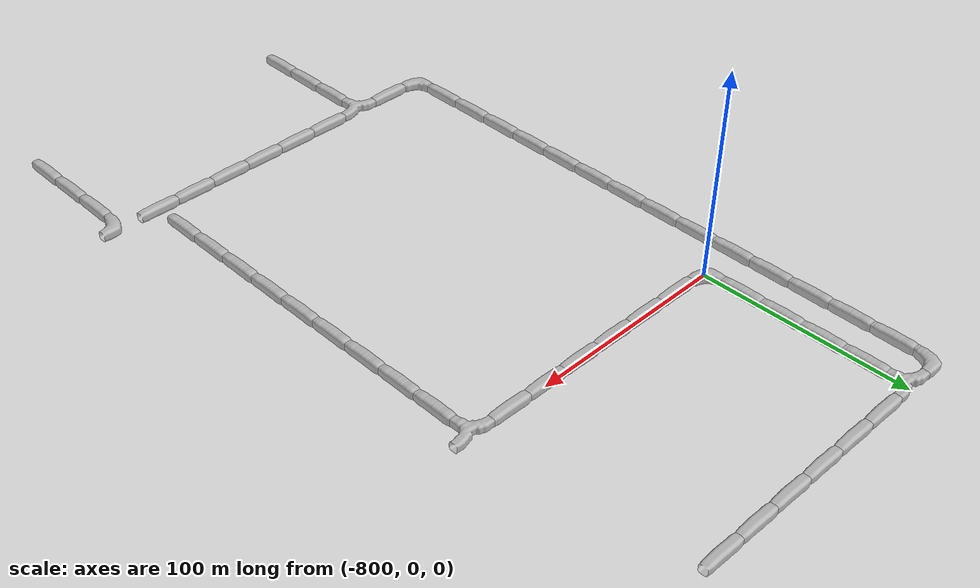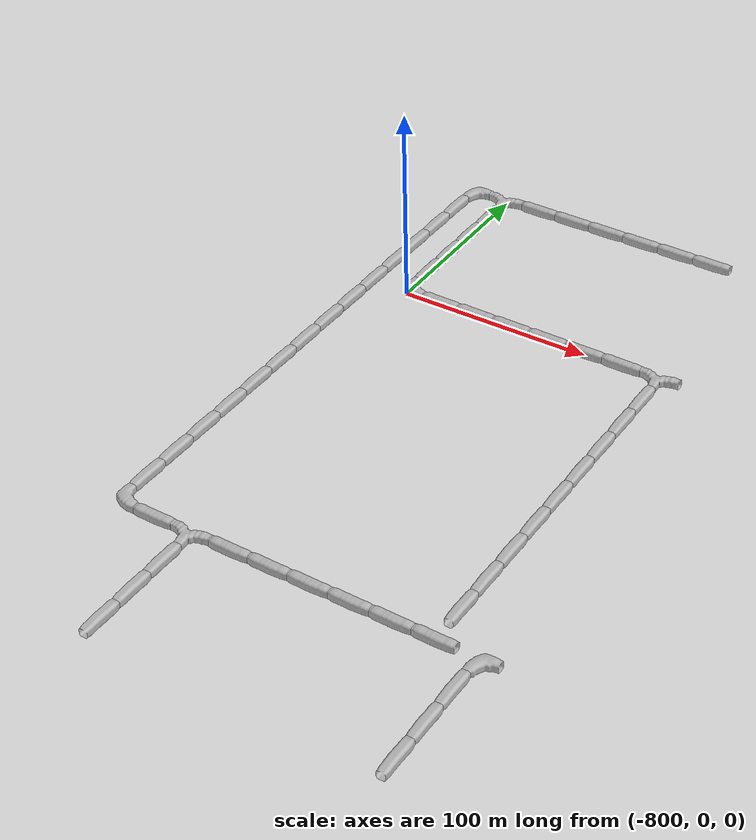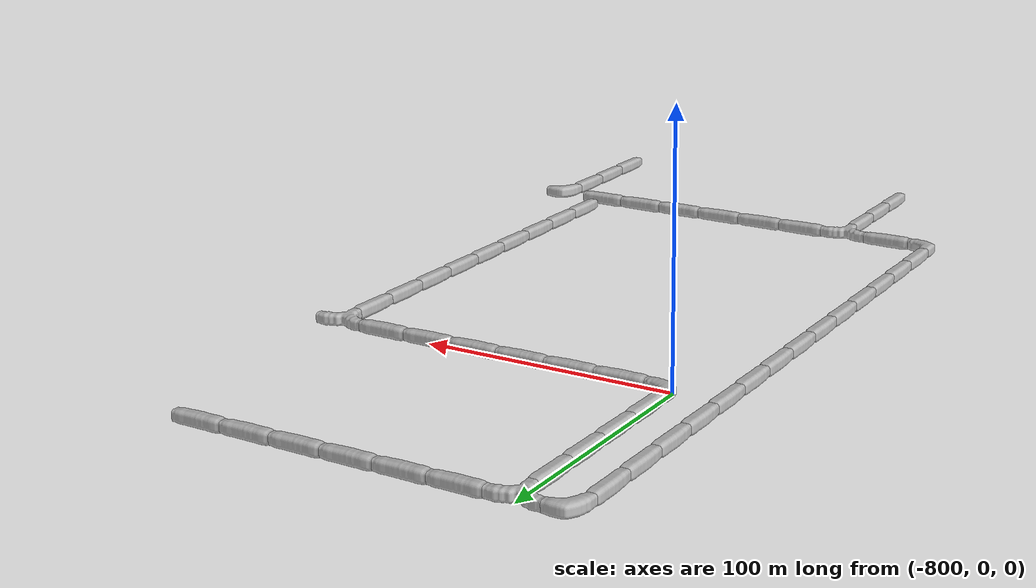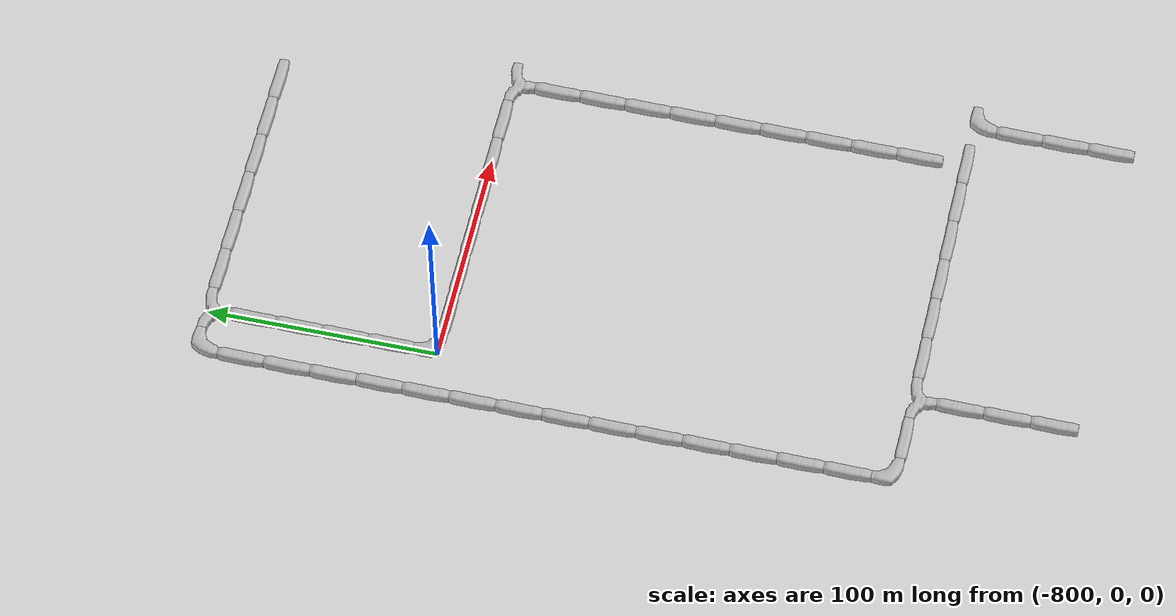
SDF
<sdf version="1.6">
 <world name="cave_32000_64">
  <include>
   <static>true</static>
   <name>cave_-32_-10</name>
   <pose>-640 -200 0 0 0 -1.5707963267948966</pose>
   <uri>model://cave_L_20m</uri>
  </include>
  <include>
   <static>true</static>
   <name>cave_-32_-11</name>
   <pose>-640 -220 0 0 0 0.0</pose>
   <uri>model://cave_straight_20m</uri>
  </include>
  <include>
   <static>true</static>
   <name>cave_-32_-12</name>
   <pose>-640 -240 0 0 0 0.0</pose>
   <uri>model://cave_straight_20m</uri>
  </include>
  <include>
   <static>true</static>
   <name>cave_-32_-13</name>
   <pose>-640 -260 0 0 0 0.0</pose>
   <uri>model://cave_straight_20m</uri>
  </include>
  <include>
   <static>true</static>
   <name>cave_-39_-13</name>
   <pose>-780 -260 0 0 0 0.0</pose>
   <uri>model://cave_straight_20m</uri>
  </include>
  <include>
   <static>true</static>
   <name>cave_-39_-12</name>
   <pose>-780 -240 0 0 0 0.0</pose>
   <uri>model://cave_straight_20m</uri>
  </include>
  <include>
   <static>true</static>
   <name>cave_-39_-11</name>
   <pose>-780 -220 0 0 0 0.0</pose>
   <uri>model://cave_straight_20m</uri>
  </include>
  <include>
   <static>true</static>
   <name>cave_-39_-10</name>
   <pose>-780 -200 0 0 0 3.141592653589793</pose>
   <uri>model://cave_3way_20m</uri>
  </include>
  <include>
   <static>true</static>
   <name>cave_-38_-10</name>
   <pose>-760 -200 0 0 0 1.5707963267948966</pose>
   <uri>model://cave_straight_20m</uri>
  </include>
  <include>
   <static>true</static>
   <name>cave_-37_-10</name>
   <pose>-740 -200 0 0 0 1.5707963267948966</pose>
   <uri>model://cave_straight_20m</uri>
  </include>
  <include>
   <static>true</static>
   <name>cave_-36_-10</name>
   <pose>-720 -200 0 0 0 1.5707963267948966</pose>
   <uri>model://cave_straight_20m</uri>
  </include>
  <include>
   <static>true</static>
   <name>cave_-35_-10</name>
   <pose>-700 -200 0 0 0 1.5707963267948966</pose>
   <uri>model://cave_straight_20m</uri>
  </include>
  <include>
   <static>true</static>
   <name>cave_-34_-10</name>
   <pose>-680 -200 0 0 0 1.5707963267948966</pose>
   <uri>model://cave_straight_20m</uri>
  </include>
  <include>
   <static>true</static>
   <name>cave_-33_-10</name>
   <pose>-660 -200 0 0 0 1.5707963267948966</pose>
   <uri>model://cave_straight_20m</uri>
  </include>
  <include>
   <static>true</static>
   <name>cave_-40_-10</name>
   <pose>-800 -200 0 0 0 1.5707963267948966</pose>
   <uri>model://cave_straight_20m</uri>
  </include>
  <include>
   <static>true</static>
   <name>cave_-41_-10</name>
   <pose>-820 -200 0 0 0 0.0</pose>
   <uri>model://cave_L_20m</uri>
  </include>
  <include>
   <static>true</static>
   <name>cave_-41_-9</name>
   <pose>-820 -180 0 0 0 0.0</pose>
   <uri>model://cave_straight_20m</uri>
  </include>
  <include>
   <static>true</static>
   <name>cave_-41_-8</name>
   <pose>-820 -160 0 0 0 0.0</pose>
   <uri>model://cave_straight_20m</uri>
  </include>
  <include>
   <static>true</static>
   <name>cave_-41_-7</name>
   <pose>-820 -140 0 0 0 0.0</pose>
   <uri>model://cave_straight_20m</uri>
  </include>
  <include>
   <static>true</static>
   <name>cave_-41_-6</name>
   <pose>-820 -120 0 0 0 0.0</pose>
   <uri>model://cave_straight_20m</uri>
  </include>
  <include>
   <static>true</static>
   <name>cave_-41_-5</name>
   <pose>-820 -100 0 0 0 0.0</pose>
   <uri>model://cave_straight_20m</uri>
  </include>
  <include>
   <static>true</static>
   <name>cave_-41_-4</name>
   <pose>-820 -80 0 0 0 0.0</pose>
   <uri>model://cave_straight_20m</uri>
  </include>
  <include>
   <static>true</static>
   <name>cave_-41_-3</name>
   <pose>-820 -60 0 0 0 0.0</pose>
   <uri>model://cave_straight_20m</uri>
  </include>
  <include>
   <static>true</static>
   <name>cave_-41_-2</name>
   <pose>-820 -40 0 0 0 0.0</pose>
   <uri>model://cave_straight_20m</uri>
  </include>
  <include>
   <static>true</static>
   <name>cave_-41_-1</name>
   <pose>-820 -20 0 0 0 0.0</pose>
   <uri>model://cave_straight_20m</uri>
  </include>
  <include>
   <static>true</static>
   <name>cave_-41_0</name>
   <pose>-820 0 0 0 0 0.0</pose>
   <uri>model://cave_straight_20m</uri>
  </include>
  <include>
   <static>true</static>
   <name>cave_-41_1</name>
   <pose>-820 20 0 0 0 0.0</pose>
   <uri>model://cave_straight_20m</uri>
  </include>
  <include>
   <static>true</static>
   <name>cave_-41_2</name>
   <pose>-820 40 0 0 0 0.0</pose>
   <uri>model://cave_straight_20m</uri>
  </include>
  <include>
   <static>true</static>
   <name>cave_-41_3</name>
   <pose>-820 60 0 0 0 0.0</pose>
   <uri>model://cave_straight_20m</uri>
  </include>
  <include>
   <static>true</static>
   <name>cave_-41_4</name>
   <pose>-820 80 0 0 0 0.0</pose>
   <uri>model://cave_straight_20m</uri>
  </include>
  <include>
   <static>true</static>
   <name>cave_-41_5</name>
   <pose>-820 100 0 0 0 -1.5707963267948966</pose>
   <uri>model://cave_L_20m</uri>
  </include>
  <include>
   <static>true</static>
   <name>cave_-40_5</name>
   <pose>-800 100 0 0 0 3.141592653589793</pose>
   <uri>model://cave_3way_20m</uri>
  </include>
  <include>
   <static>true</static>
   <name>cave_-39_5</name>
   <pose>-780 100 0 0 0 1.5707963267948966</pose>
   <uri>model://cave_straight_20m</uri>
  </include>
  <include>
   <static>true</static>
   <name>cave_-38_5</name>
   <pose>-760 100 0 0 0 1.5707963267948966</pose>
   <uri>model://cave_straight_20m</uri>
  </include>
  <include>
   <static>true</static>
   <name>cave_-37_5</name>
   <pose>-740 100 0 0 0 1.5707963267948966</pose>
   <uri>model://cave_straight_20m</uri>
  </include>
  <include>
   <static>true</static>
   <name>cave_-36_5</name>
   <pose>-720 100 0 0 0 1.5707963267948966</pose>
   <uri>model://cave_straight_20m</uri>
  </include>
  <include>
   <static>true</static>
   <name>cave_-35_5</name>
   <pose>-700 100 0 0 0 1.5707963267948966</pose>
   <uri>model://cave_straight_20m</uri>
  </include>
  <include>
   <static>true</static>
   <name>cave_-34_5</name>
   <pose>-680 100 0 0 0 1.5707963267948966</pose>
   <uri>model://cave_straight_20m</uri>
  </include>
  <include>
   <static>true</static>
   <name>cave_-40_4</name>
   <pose>-800 80 0 0 0 0.0</pose>
   <uri>model://cave_straight_20m</uri>
  </include>
  <include>
   <static>true</static>
   <name>cave_-40_3</name>
   <pose>-800 60 0 0 0 0.0</pose>
   <uri>model://cave_straight_20m</uri>
  </include>
  <include>
   <static>true</static>
   <name>cave_-40_2</name>
   <pose>-800 40 0 0 0 0.0</pose>
   <uri>model://cave_straight_20m</uri>
  </include>
  <include>
   <static>true</static>
   <name>cave_-40_1</name>
   <pose>-800 20 0 0 0 0.0</pose>
   <uri>model://cave_straight_20m</uri>
  </include>
  <include>
   <static>true</static>
   <name>cave_-40_0</name>
   <pose>-800 0 0 0 0 0.0</pose>
   <uri>model://cave_L_20m</uri>
  </include>
  <include>
   <static>true</static>
   <name>cave_-39_0</name>
   <pose>-780 0 0 0 0 1.5707963267948966</pose>
   <uri>model://cave_straight_20m</uri>
  </include>
  <include>
   <static>true</static>
   <name>cave_-38_0</name>
   <pose>-760 0 0 0 0 1.5707963267948966</pose>
   <uri>model://cave_straight_20m</uri>
  </include>
  <include>
   <static>true</static>
   <name>cave_-37_0</name>
   <pose>-740 0 0 0 0 1.5707963267948966</pose>
   <uri>model://cave_straight_20m</uri>
  </include>
  <include>
   <static>true</static>
   <name>cave_-36_0</name>
   <pose>-720 0 0 0 0 1.5707963267948966</pose>
   <uri>model://cave_straight_20m</uri>
  </include>
  <include>
   <static>true</static>
   <name>cave_-35_0</name>
   <pose>-700 0 0 0 0 1.5707963267948966</pose>
   <uri>model://cave_straight_20m</uri>
  </include>
  <include>
   <static>true</static>
   <name>cave_-34_0</name>
   <pose>-680 0 0 0 0 1.5707963267948966</pose>
   <uri>model://cave_straight_20m</uri>
  </include>
  <include>
   <static>true</static>
   <name>cave_-33_0</name>
   <pose>-660 0 0 0 0 3.141592653589793</pose>
   <uri>model://cave_3way_20m</uri>
  </include>
  <include>
   <static>true</static>
   <name>cave_-33_-1</name>
   <pose>-660 -20 0 0 0 0.0</pose>
   <uri>model://cave_straight_20m</uri>
  </include>
  <include>
   <static>true</static>
   <name>cave_-33_-2</name>
   <pose>-660 -40 0 0 0 0.0</pose>
   <uri>model://cave_straight_20m</uri>
  </include>
  <include>
   <static>true</static>
   <name>cave_-33_-3</name>
   <pose>-660 -60 0 0 0 0.0</pose>
   <uri>model://cave_straight_20m</uri>
  </include>
  <include>
   <static>true</static>
   <name>cave_-33_-4</name>
   <pose>-660 -80 0 0 0 0.0</pose>
   <uri>model://cave_straight_20m</uri>
  </include>
  <include>
   <static>true</static>
   <name>cave_-33_-5</name>
   <pose>-660 -100 0 0 0 0.0</pose>
   <uri>model://cave_straight_20m</uri>
  </include>
  <include>
   <static>true</static>
   <name>cave_-33_-6</name>
   <pose>-660 -120 0 0 0 0.0</pose>
   <uri>model://cave_straight_20m</uri>
  </include>
  <include>
   <static>true</static>
   <name>cave_-33_-7</name>
   <pose>-660 -140 0 0 0 0.0</pose>
   <uri>model://cave_straight_20m</uri>
  </include>
  <include>
   <static>true</static>
   <name>cave_-33_-8</name>
   <pose>-660 -160 0 0 0 0.0</pose>
   <uri>model://cave_straight_20m</uri>
  </include>
  <include>
   <static>true</static>
   <name>cave_-33_-9</name>
   <pose>-660 -180 0 0 0 0.0</pose>
   <uri>model://cave_straight_20m</uri>
  </include>
 </world>
</sdf>
